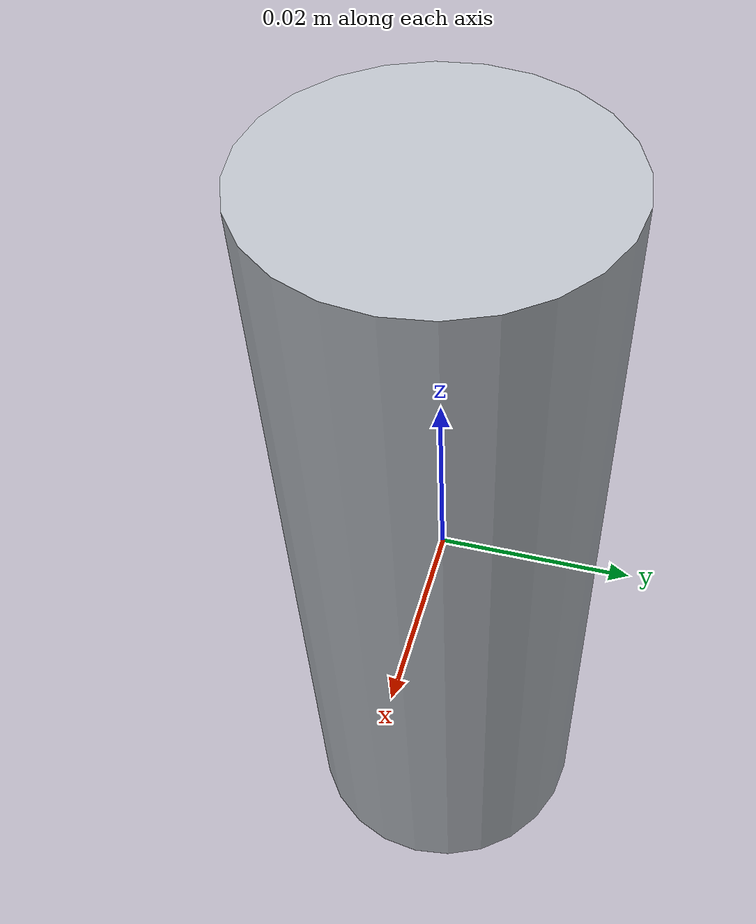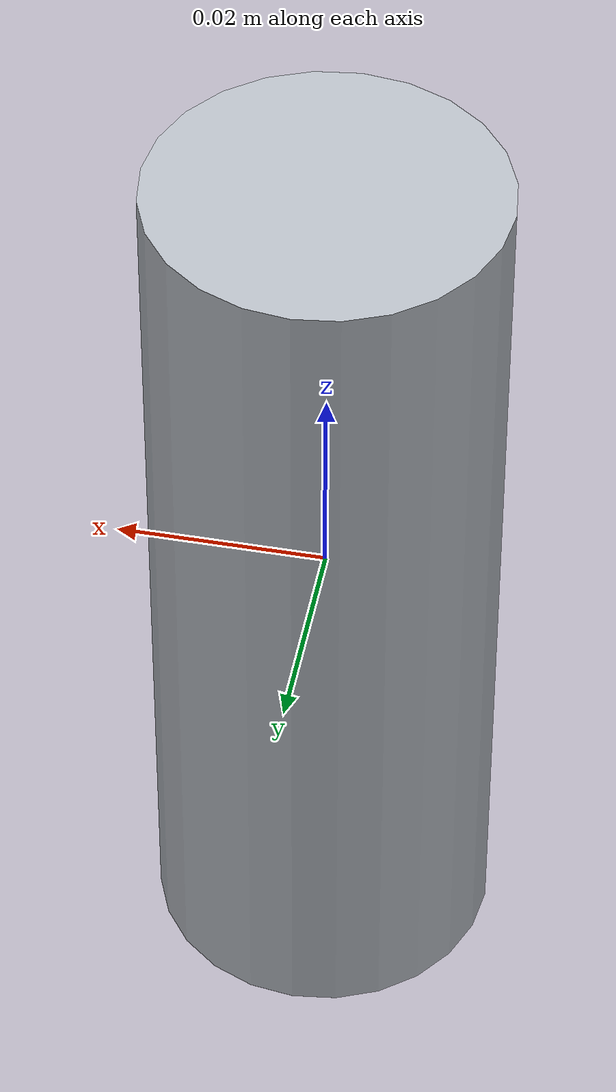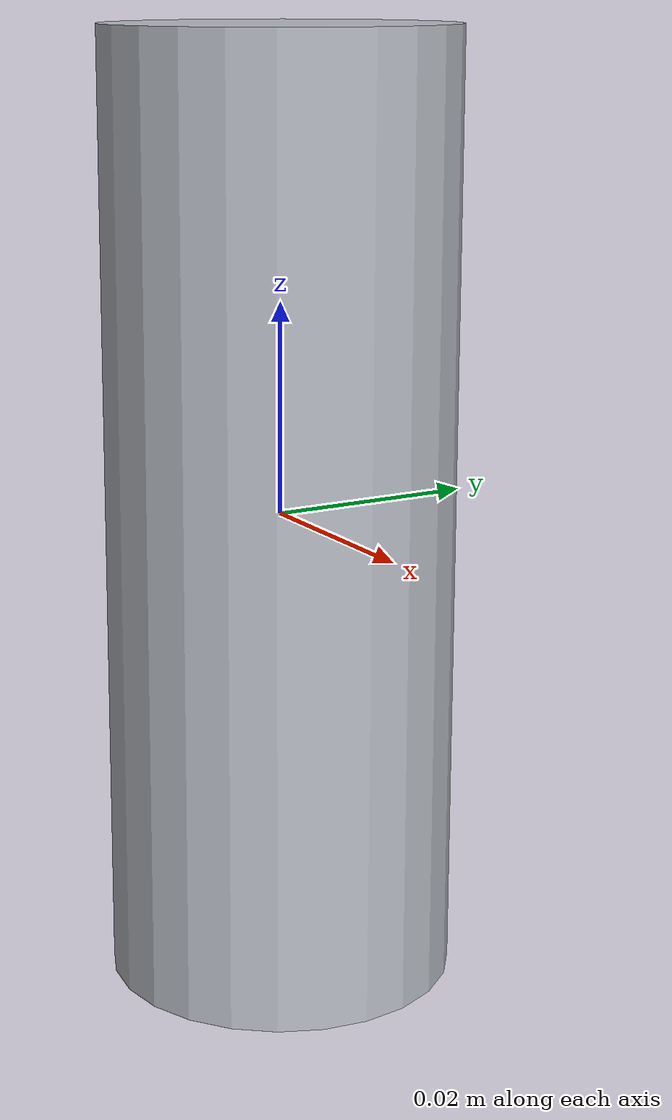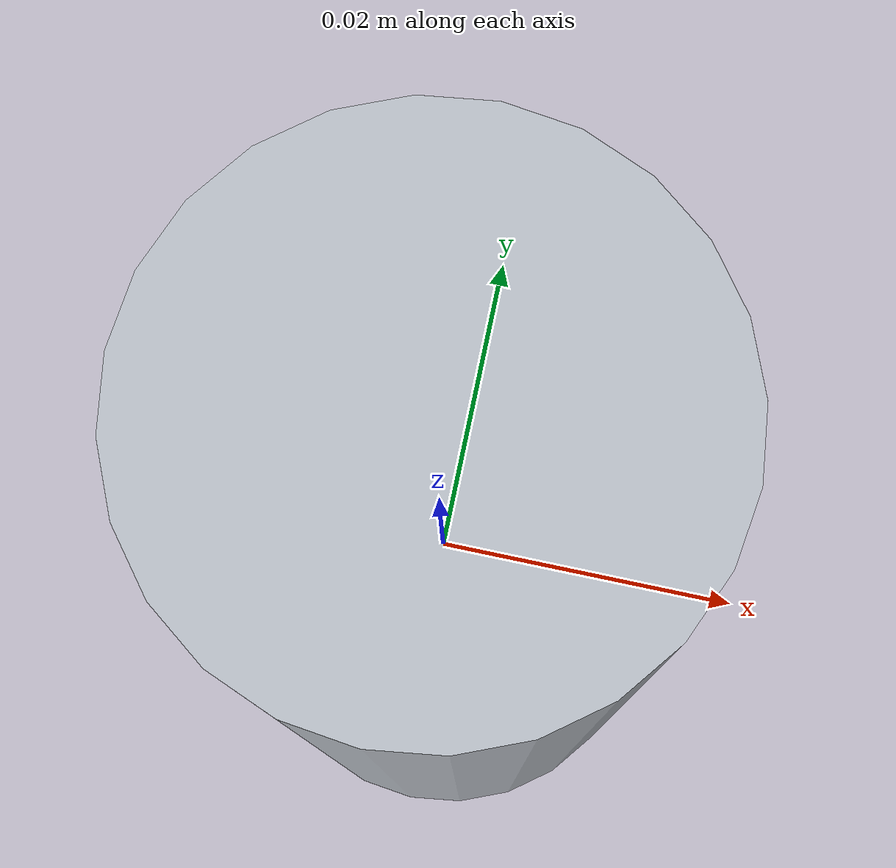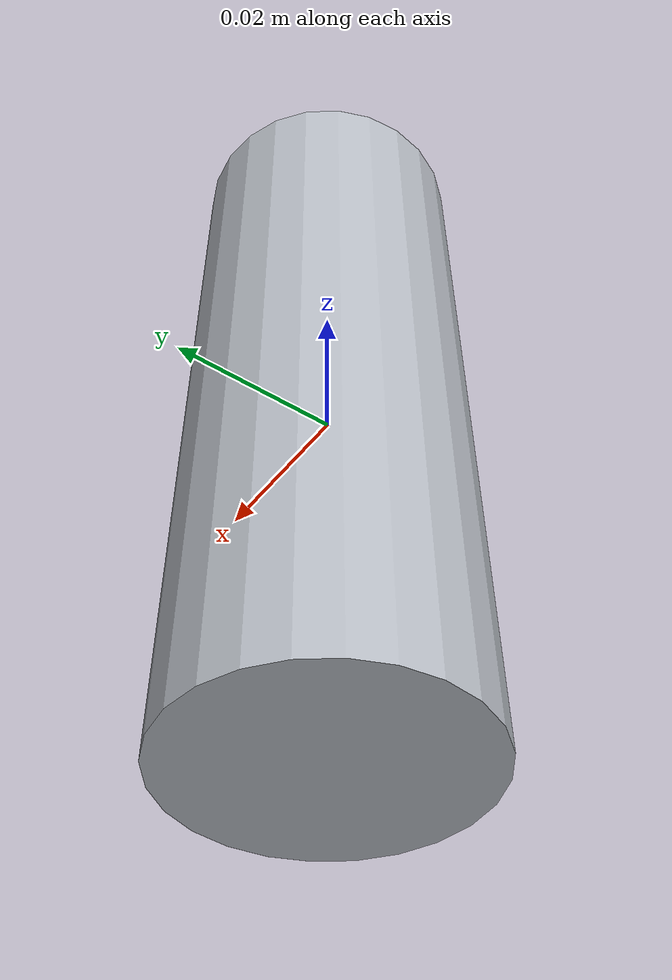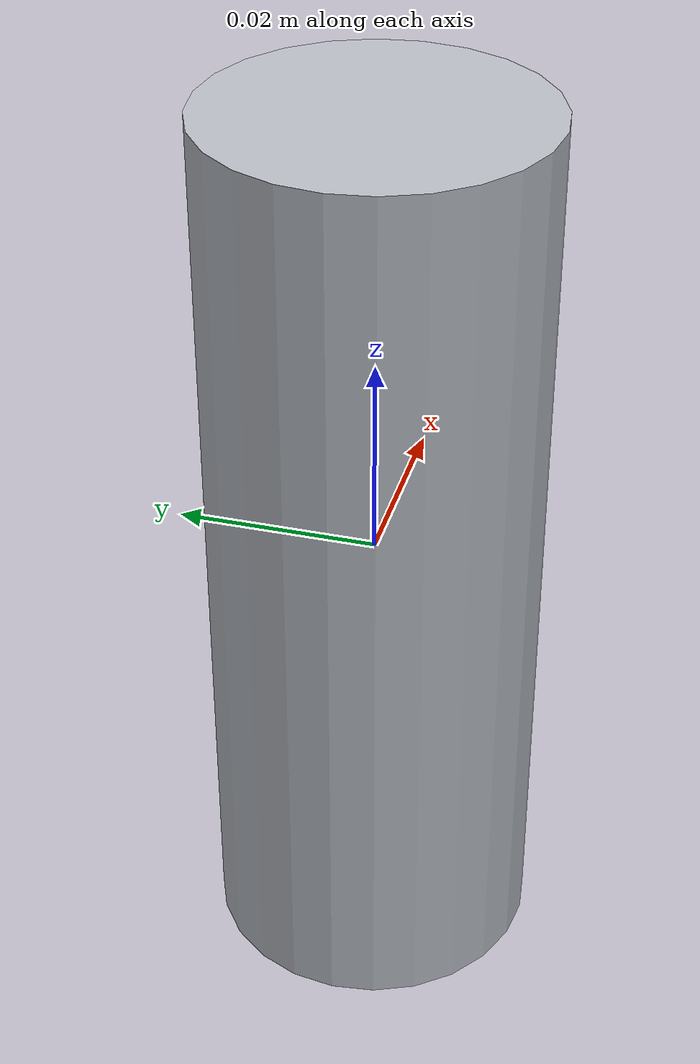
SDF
<?xml version="1.0"?>
<!-- Dechet "canette" : cylindre gris metal Ø0.033 x 0.09, ~0.02 kg. Classe metal. -->
<sdf version="1.10">
  <model name="trash_can">
    <link name="link">
      <inertial>
        <mass>0.02</mass>
        <inertia><ixx>1.5e-5</ixx><iyy>1.5e-5</iyy><izz>2.7e-6</izz>
          <ixy>0</ixy><ixz>0</ixz><iyz>0</iyz></inertia>
      </inertial>
      <collision name="collision">
        <geometry><cylinder><radius>0.0165</radius><length>0.09</length></cylinder></geometry>
      </collision>
      <visual name="visual">
        <geometry><cylinder><radius>0.0165</radius><length>0.09</length></cylinder></geometry>
        <material>
          <ambient>0.55 0.57 0.60 1</ambient>
          <diffuse>0.72 0.74 0.77 1</diffuse>
          <specular>0.6 0.6 0.6 1</specular>
        </material>
      </visual>
    </link>
  </model>
</sdf>
